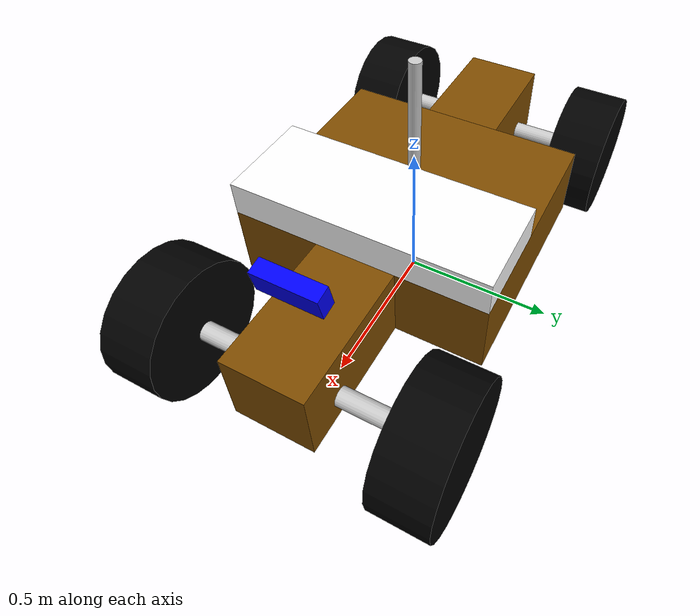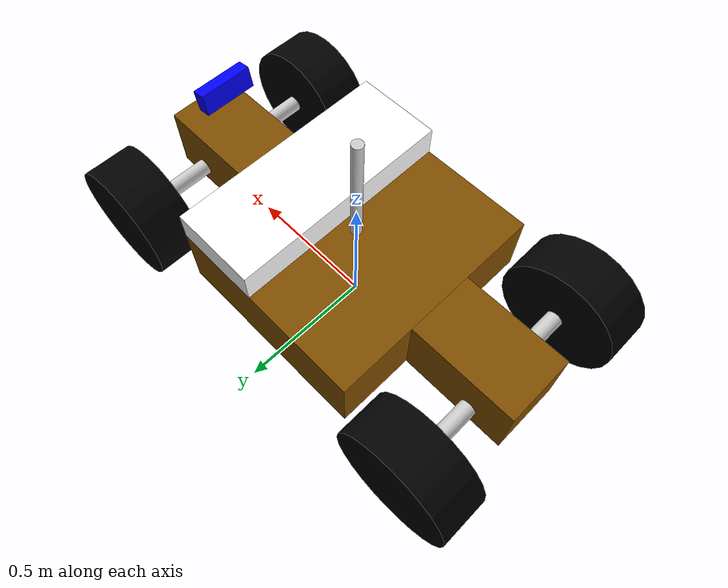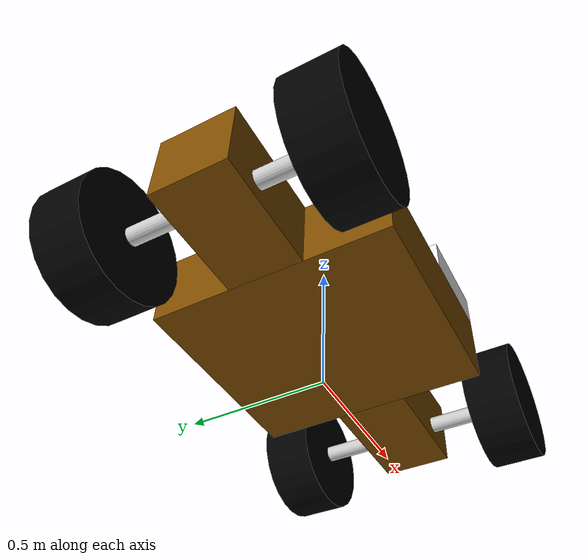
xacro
<!-- 根标签，必须声明 xmlns:xacro -->
<robot name="car_base" xmlns:xacro="http://www.ros.org/wiki/xacro">
    <!-- 封装变量、常量 -->
    <xacro:property name="PI" value="3.1415926"/>
    <!-- 宏:黑色设置 -->
    <material name="black">
      <color rgba="0.0 0.0 0.0 1.0" />
    </material>
    <!-- 底盘属性 -->
    <xacro:property name="base_footprint_radius" value="0.001" /> <!-- base_footprint 半径  -->
    <xacro:property name="earth_space" value="0.145" /> <!-- 离地间距 -->
    <xacro:property name="base_link_height" value="0.25" /> <!-- 底盘高度 -->
    <xacro:property name="base_link_m" value="50" />
    <xacro:property name="base_link_back_m" value="20" />
    <xacro:property name="base_link_front_m" value="20" />

    <!-- Macro for inertia matrix -->
    <xacro:macro name="sphere_inertial_matrix" params="m r">
        <inertial>
            <mass value="${m}" />
            <inertia ixx="${2*m*r*r/5}" ixy="0" ixz="0"
                iyy="${2*m*r*r/5}" iyz="0"
                izz="${2*m*r*r/5}" />
        </inertial>
    </xacro:macro>

    <xacro:macro name="cylinder_inertial_matrix" params="m r h">
        <inertial>
            <mass value="${m}" />
            <inertia ixx="${m*(3*r*r+h*h)/12}" ixy ="0" ixz ="0"
                iyy="${m*r*r/2}" iyz ="0"
                izz="${m*(3*r*r+h*h)/12}" />
        </inertial>
    </xacro:macro>

    <xacro:macro name="Box_inertial_matrix" params="m l w h">
       <inertial>
               <mass value="${m}" />
               <inertia ixx="${m*(h*h + l*l)/12}" ixy ="0" ixz ="0"
                   iyy="${m*(w*w + h*h)/12}" iyz="0"
                   izz="${m*(w*w + l*l)/12}" />
       </inertial>
   </xacro:macro>

    <!-- 底盘 -->
    <link name="base_footprint">
      <visual>
        <geometry>
          <sphere radius="${base_footprint_radius}" />
        </geometry>
      </visual>
    </link>

    <link name="base_link">
      <visual>
        <geometry>
          <box size="0.75 0.835 0.25" />
        </geometry>
        <origin xyz="0 0 0" rpy="0 0 0" />
        <material name="yellow">
          <color rgba="0.5 0.3 0.0 1.0" />
        </material>
      </visual>
      <collision>
        <geometry>
          <box size="0.75 0.835 0.25" />
        </geometry>
        <origin xyz="0 0 0" rpy="0 0 0" />
      </collision>
      <xacro:Box_inertial_matrix m="${base_link_m}" l="0.75" w="0.835" h="0.25"/>
    </link>

    <link name="base_link_back">
      <visual>
        <geometry>
          <box size="0.4 0.26 0.25" />
        </geometry>
        <origin xyz="0 0 0" rpy="0 0 0" />
        <material name="yellow">
          <color rgba="0.5 0.3 0.0 1.0" />
        </material>
      </visual>
      <collision>
        <geometry>
          <box size="0.4 0.26 0.25" />
        </geometry>
        <origin xyz="0 0 0" rpy="0 0 0" />
      </collision>
      <xacro:Box_inertial_matrix m="${base_link_back_m}" l="0.4" w="0.26" h="0.25"/>
    </link>

    <link name="base_link_front">
      <visual>
        <geometry>
          <box size="0.45 0.26 0.25" />
        </geometry>
        <origin xyz="0 0 0" rpy="0 0 0" />
        <material name="yellow">
          <color rgba="0.5 0.3 0.0 1.0" />
        </material>
      </visual>
      <collision>
        <geometry>
          <box size="0.45 0.26 0.25" />
        </geometry>
        <origin xyz="0 0 0" rpy="0 0 0" />
      </collision>
      <xacro:Box_inertial_matrix m="${base_link_front_m}" l="0.45" w="0.26" h="0.25"/>
    </link>

    <joint name="base_link2base_footprint" type="fixed">
      <parent link="base_footprint" />
      <child link="base_link" />
      <origin xyz="0 0 ${earth_space + base_link_height / 2 }" />
    </joint>

    <joint name="base_link2base_link_back" type="fixed">
      <parent link="base_link" />
      <child link="base_link_back" />
      <origin xyz="-0.575 0 0" />
    </joint>

    <joint name="base_link2base_link_front" type="fixed">
      <parent link="base_link" />
      <child link="base_link_front" />
      <origin xyz="0.6 0 0" />
    </joint>

    <gazebo reference="base_link">
      <material>Gazebo/Yellow</material>
    </gazebo>
    <gazebo reference="base_link_back">
      <material>Gazebo/Yellow</material>
    </gazebo>
    <gazebo reference="base_link_front">
      <material>Gazebo/Yellow</material>
    </gazebo>

    <!-- 驱动轮（后轮） -->
    <!-- 轮子属性 -->
    <xacro:property name="wheel_radius" value="0.22" /><!-- 半径 -->
    <xacro:property name="wheel_length" value="0.18" /><!-- 宽度 -->
    <xacro:property name="wheel_m" value="1" /> <!-- 质量  -->
    <!-- 驱动轮宏实现 -->
    <link name="backshaft">
      <visual>
        <geometry>
          <cylinder radius="0.03" length="0.8" />
        </geometry>
        <origin xyz="0 0 0" rpy="${PI/2} 0 0" />
        <material name="grey">
          <color rgba="0.8 0.8 0.8 1" />
        </material>
      </visual>
      <collision>
        <geometry>
        <cylinder radius="0.03" length="0.8" />
        </geometry>
        <origin xyz="0 0 0" rpy="${PI/2} 0 0" />
      </collision>
      <xacro:cylinder_inertial_matrix m="0.001" r="0.03" h="0.8" />
    </link>

    <gazebo reference="backshaft">
      <material>Gazebo/Grey</material>
        <mu1>100</mu1>
        <mu2>100</mu2>
    </gazebo>

    <xacro:macro name="add_backwheels" params="name flag">
      <link name="${name}_backwheel">
        <visual>
          <geometry>
            <cylinder radius="${wheel_radius}" length="${wheel_length}" />
          </geometry>
          <origin xyz="0.0 0.0 0.0" rpy="${PI / 2} 0.0 0.0" />
          <material name="black" />
        </visual>
        <collision>
          <geometry>
            <cylinder radius="${wheel_radius}" length="${wheel_length}" />
          </geometry>
          <origin xyz="0.0 0.0 0.0" rpy="${PI / 2} 0.0 0.0" />
        </collision>
        <xacro:cylinder_inertial_matrix m="${wheel_m}" r="${wheel_radius}" h="${wheel_length}" />
      </link>

      <joint name="${name}_backwheel2base_link" type="continuous">
        <parent link="backshaft" />
        <child link="${name}_backwheel" />
        <origin xyz="0 ${flag * 0.4} 0.0" />
        <axis xyz="0 1 0" />
      </joint>

      <gazebo reference="${name}_backwheel">
        <material>Gazebo/Black</material>
        <mu1>10000</mu1>
        <mu2>10000</mu2>
      </gazebo>

    </xacro:macro>

    <joint name="backshaft2base_link" type="fixed">
        <parent link="base_link" />
        <child link="backshaft" />
        <origin xyz="-0.635 0.0 ${-(earth_space + base_link_height / 2 - wheel_radius) }" />
        <axis xyz="0 0 0" />
    </joint>

    <xacro:add_backwheels name="left" flag="1" />
    <xacro:add_backwheels name="right" flag="-1" />

    <!-- 转向轮（前轮） -->
    <xacro:property name="degrees_28" value="0.49"/>
    <xacro:property name="servo_stall_torque" value="1000000.0"/>
    <xacro:property name="servo_no_load_speed" value="10000.0"/>
    <!-- 转向轮实现 -->
    <link name="frontshaft">
      <visual>
        <geometry>
          <cylinder radius="0.03" length="0.8" />
        </geometry>
        <origin xyz="0 0 0" rpy="${PI/2} 0 0" />
        <material name="grey">
          <color rgba="0.8 0.8 0.8 1" />
        </material>
      </visual>
      <collision>
        <geometry>
        <cylinder radius="0.03" length="0.8" />
        </geometry>
        <origin xyz="0 0 0" rpy="${PI/2} 0 0" />
      </collision>
      <xacro:cylinder_inertial_matrix m="0.001" r="0.03" h="0.8" />
    </link>

    <gazebo reference="frontshaft">
      <material>Gazebo/Grey</material>
      <mu1>100</mu1>
      <mu2>100</mu2>
    </gazebo>

  	<link name="left_bridge">
      <visual>
        <geometry>
          <cylinder radius="0.04" length="0.1" />
        </geometry>
        <origin xyz="0 0 0" rpy="${PI/2} 0 0" />
        <material name="red">
          <color rgba="1.0 0.0 0.0 1" />
        </material>
      </visual>
      <collision>
        <geometry>
        <cylinder radius="0.04" length="0.1" />
        </geometry>
        <origin xyz="0 0 0" rpy="${PI/2} 0 0" />
      </collision>
      <xacro:cylinder_inertial_matrix m="0.001" r="0.04" h="0.1" />
    </link>

    <gazebo reference="left_bridge">
      <material>Gazebo/Grey</material>
      <mu1>100</mu1>
      <mu2>100</mu2>
    </gazebo>

  	<link name="right_bridge">
      <visual>
        <geometry>
          <cylinder radius="0.04" length="0.1" />
        </geometry>
        <origin xyz="0 0 0" rpy="${PI/2} 0 0" />
        <material name="red">
          <color rgba="1.0 0.0 0.0 1" />
        </material>
      </visual>
      <collision>
        <geometry>
        <cylinder radius="0.04" length="0.1" />
        </geometry>
        <origin xyz="0 0 0" rpy="${PI/2} 0 0" />
      </collision>
      <xacro:cylinder_inertial_matrix m="0.001" r="0.04" h="0.1" />
    </link>

    <gazebo reference="right_bridge">
      <material>Gazebo/Grey</material>
      <mu1>100</mu1>
      <mu2>100</mu2>
    </gazebo>

    <xacro:macro name="add_frontwheels" params="name flag">
      <link name="${name}_frontwheel">
        <visual>
          <geometry>
            <cylinder radius="${wheel_radius}" length="${wheel_length}" />
          </geometry>
          <origin xyz="0.0 0.0 0.0" rpy="${PI / 2} 0.0 0.0" />
          <material name="black" />
        </visual>
        <collision>
          <geometry>
            <cylinder radius="${wheel_radius}" length="${wheel_length}" />
          </geometry>
          <origin xyz="0.0 0.0 0.0" rpy="${PI / 2} 0.0 0.0" />
        </collision>
        <xacro:cylinder_inertial_matrix m="${wheel_m}" r="${wheel_radius}" h="${wheel_length}" />
      </link>

      <gazebo reference="${name}_frontwheel">
        <material>Gazebo/Black</material>
        <mu1>0.1</mu1>
        <mu2>0.1</mu2>
      </gazebo>

      <joint name="${name}_bridge2base_link" type="revolute">
        <parent link="frontshaft" />
        <child link="${name}_bridge" />
        <origin xyz="0 ${flag * 0.4175} 0.0" />
        <axis xyz="0 0 1" />
        <limit lower="${-degrees_28}" upper="${degrees_28}"
             effort="${servo_stall_torque}" velocity="${servo_no_load_speed}"/>
      </joint>

      <joint name="${name}_frontwheel2${name}_bridge" type="continuous">
        <parent link="${name}_bridge" />
        <child link="${name}_frontwheel" />
        <origin xyz="0.0 0.0 0.0" />
        <axis xyz="0 1 0" />
      </joint>
    </xacro:macro>

    <joint name="frontshaft2base_link" type="fixed">
        <parent link="base_link" />
        <child link="frontshaft" />
        <origin xyz="0.685 0.0 ${-(earth_space + base_link_height / 2 - wheel_radius) }" />
        <axis xyz="0 0 0" />
    </joint>

    <xacro:add_frontwheels name="left" flag="1" />
    <xacro:add_frontwheels name="right" flag="-1" />

    <!-- IMU支撑架实现 -->
    <xacro:property name="frame0_m" value="0.01" />
    <link name="frame0">
      <visual>
        <geometry>
          <box size="0.32 0.835 0.115" />
        </geometry>
        <origin xyz="0 0 0" rpy="0 0 0" />
        <material name="white">
          <color rgba="1.0 1.0 1.0 1.0" />
        </material>
      </visual>
      <collision>
        <geometry>
          <box size="0.32 0.835 0.115" />
        </geometry>
        <origin xyz="0 0 0" rpy="0 0 0" />
      </collision>
      <xacro:Box_inertial_matrix m="${frame0_m}" l="0.32" w="0.835" h="0.115"/>
    </link>

    <joint name="frame02base_link" type="fixed">
      <parent link="base_link" />
      <child link="frame0" />
      <origin xyz="0.215 0 0.1825" />
    </joint>

    <gazebo reference="frame0">
      <material>Gazebo/White</material>
    </gazebo>

    <!-- 激光雷达支架 -->
    <link name="frame1">
      <visual>
        <geometry>
          <cylinder radius="0.02" length="0.445" />
        </geometry>
        <origin xyz="0 0 0" rpy="0 0 0" />
        <material name="grey">
          <color rgba="0.8 0.8 0.8 1" />
        </material>
      </visual>
      <collision>
        <geometry>
          <cylinder radius="0.02" length="0.445" />
        </geometry>
        <origin xyz="0 0 0" rpy="0 0 0" />
      </collision>
      <xacro:cylinder_inertial_matrix m="0.01" r="0.02" h="0.445" />
    </link>

    <joint name="frame12base_link" type="fixed">
      <parent link="base_link" />
      <child link="frame1" />
      <origin xyz="0.0 0.0 0.3475" />
    </joint>

    <gazebo reference="frame1">
      <material>Gazebo/Yellow</material>
    </gazebo>

    <!-- 摄像头 -->
    <link name="camera">
      <visual>
        <geometry>
          <box size="0.05 0.2 0.08" />
        </geometry>
        <origin xyz="0 0 0" rpy="0 0 0" />
        <material name="blue">
          <color rgba="0.0 0.0 1.0 1.0" />
        </material>
      </visual>
      <collision>
        <geometry>
          <box size="0.05 0.2 0.08" />
        </geometry>
        <origin xyz="0 0 0" rpy="0 0 0" />
      </collision>
      <xacro:Box_inertial_matrix m="0.2" l="0.05" w="0.2" h="0.08"/>
    </link>

    <gazebo reference="camera">
      <material>Gazebo/Blue</material>
    </gazebo>

    <joint name="camera_joint" type="fixed">
      <origin xyz="0.435 0 0.1175" rpy="0 0.18 0" />
      <parent link="frame0"/>
      <child link="camera"/>
    </joint>

  <!-- ros2_control 配置：为需要控制的 joint 指定接口 -->
  <ros2_control name="carlike_robot_control" type="system">
    <hardware>
      <plugin>gazebo_ros2_control/GazeboSystem</plugin>
    </hardware>

    <!-- 驱动轮（速度控制） -->
    <joint name="left_backwheel2base_link">
      <command_interface name="velocity">
        <param name="min">-10</param>
        <param name="max">10</param>
      </command_interface>
      <state_interface name="position" />
      <state_interface name="velocity" />
    </joint>

    <joint name="right_backwheel2base_link">
      <command_interface name="velocity">
        <param name="min">-10</param>
        <param name="max">10</param>
      </command_interface>
      <state_interface name="position" />
      <state_interface name="velocity" />
    </joint>

    <!-- 前轮转向（位置控制） -->
    <joint name="left_bridge2base_link">
      <command_interface name="position" />
      <state_interface name="position" />
    </joint>

    <joint name="right_bridge2base_link">
      <command_interface name="position" />
      <state_interface name="position" />
    </joint>
  </ros2_control>

  <gazebo>
    <plugin name="gazebo_ros2_control" filename="libgazebo_ros2_control.so">
      <parameters>$(find carlike_robot_description)/config/controllers.yaml</parameters>
        <ros>
          <remapping>/ackermann_steering_controller/controller_state:=/controller_state</remapping>
          <remapping>/ackermann_steering_controller/odometry:=/odom</remapping>
          <remapping>/ackermann_steering_controller/reference_unstamped:=/cmd_vel</remapping>
          <remapping>/ackermann_steering_controller/tf_odometry:=/tf</remapping>
          <remapping>/ackermann_steering_controller/transition_event:=/transition_event</remapping>
        </ros>
    </plugin>
  </gazebo>
</robot>
